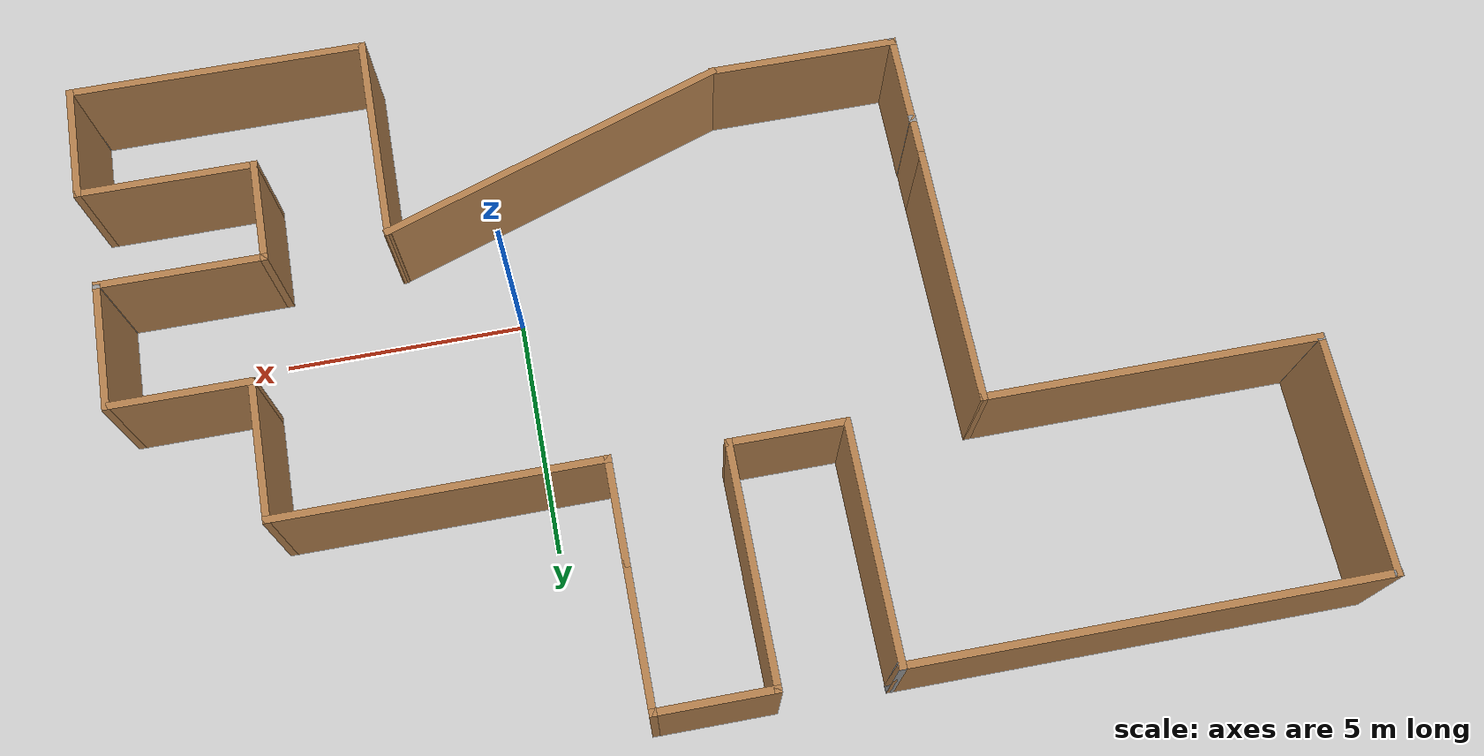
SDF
<sdf version='1.4'>
  <world name='default'>
    <!-- A global light source -->
    <include>
      <uri>model://sun</uri>
    </include>

    <!-- A ground plane -->
    <include>
      <uri>model://ground_plane</uri>
    </include>

    <physics type="ode">
      <real_time_update_rate>1000.0</real_time_update_rate>
      <max_step_size>0.001</max_step_size>
      <real_time_factor>1</real_time_factor>
      <ode>
        <solver>
          <type>quick</type>
          <iters>150</iters>
          <precon_iters>0</precon_iters>
          <sor>1.400000</sor>
          <use_dynamic_moi_rescaling>1</use_dynamic_moi_rescaling>
        </solver>
        <constraints>
          <cfm>0.00001</cfm>
          <erp>0.2</erp>
          <contact_max_correcting_vel>2000.000000</contact_max_correcting_vel>
          <contact_surface_layer>0.01000</contact_surface_layer>
        </constraints>
      </ode>
    </physics>

    <!-- Load world -->
    <include>
      <uri>model://dyno_house</uri>
    </include>

    <scene>
      <ambient>0.4 0.4 0.4 1</ambient>
      <background>0.7 0.7 0.7 1</background>
      <shadows>false</shadows>
    </scene>

    <gui fullscreen='0'>
      <camera name='user_camera'>
        <pose>0.8 0.0 12.0 0 1.5708 0</pose>
        <view_controller>orbit</view_controller>
      </camera>
    </gui>
  </world>
</sdf>

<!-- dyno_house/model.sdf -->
<sdf version='1.7'>
  <model name='dyno_house'>
    <pose>-3.58805 1.49689 0 0 -0 0</pose>
    <link name='Wall_10'>
      <collision name='Wall_10_Collision'>
        <geometry>
          <box>
            <size>2.25 0.15 2.5</size>
          </box>
        </geometry>
        <pose>0 0 1.25 0 -0 0</pose>
      </collision>
      <visual name='Wall_10_Visual'>
        <pose>0 0 1.25 0 -0 0</pose>
        <geometry>
          <box>
            <size>2.25 0.15 2.5</size>
          </box>
        </geometry>
        <material>
          <script>
            <uri>file://media/materials/scripts/gazebo.material</uri>
            <name>Gazebo/Wood</name>
          </script>
          <ambient>1 1 1 1</ambient>
        </material>
        <meta>
          <layer>0</layer>
        </meta>
      </visual>
      <pose>8.39 -4.025 0 0 -0 1.5708</pose>
    </link>
    <link name='Wall_11'>
      <collision name='Wall_11_Collision'>
        <geometry>
          <box>
            <size>3.5 0.15 2.5</size>
          </box>
        </geometry>
        <pose>0 0 1.25 0 -0 0</pose>
      </collision>
      <visual name='Wall_11_Visual'>
        <pose>0 0 1.25 0 -0 0</pose>
        <geometry>
          <box>
            <size>3.5 0.15 2.5</size>
          </box>
        </geometry>
        <material>
          <script>
            <uri>file://media/materials/scripts/gazebo.material</uri>
            <name>Gazebo/Wood</name>
          </script>
          <ambient>1 1 1 1</ambient>
        </material>
        <meta>
          <layer>0</layer>
        </meta>
      </visual>
      <pose>10.065 -2.975 0 0 -0 0</pose>
    </link>
    <link name='Wall_12'>
      <collision name='Wall_12_Collision'>
        <geometry>
          <box>
            <size>0.16 0.15 2.5</size>
          </box>
        </geometry>
        <pose>0 0 1.25 0 -0 0</pose>
      </collision>
      <visual name='Wall_12_Visual'>
        <pose>0 0 1.25 0 -0 0</pose>
        <geometry>
          <box>
            <size>0.16 0.15 2.5</size>
          </box>
        </geometry>
        <material>
          <script>
            <uri>file://media/materials/scripts/gazebo.material</uri>
            <name>Gazebo/Grey</name>
          </script>
          <ambient>1 1 1 1</ambient>
        </material>
        <meta>
          <layer>0</layer>
        </meta>
      </visual>
      <pose>11.745 -2.975 0 0 -0 0</pose>
    </link>
    <link name='Wall_13'>
      <collision name='Wall_13_Collision'>
        <geometry>
          <box>
            <size>2.75 0.15 2.5</size>
          </box>
        </geometry>
        <pose>0 0 1.25 0 -0 0</pose>
      </collision>
      <visual name='Wall_13_Visual'>
        <pose>0 0 1.25 0 -0 0</pose>
        <geometry>
          <box>
            <size>2.75 0.15 2.5</size>
          </box>
        </geometry>
        <material>
          <script>
            <uri>file://media/materials/scripts/gazebo.material</uri>
            <name>Gazebo/Wood</name>
          </script>
          <ambient>1 1 1 1</ambient>
        </material>
        <meta>
          <layer>0</layer>
        </meta>
      </visual>
      <pose>11.75 -1.675 0 0 -0 1.5708</pose>
    </link>
    <link name='Wall_14'>
      <collision name='Wall_14_Collision'>
        <geometry>
          <box>
            <size>3 0.15 2.5</size>
          </box>
        </geometry>
        <pose>0 0 1.25 0 -0 0</pose>
      </collision>
      <visual name='Wall_14_Visual'>
        <pose>0 0 1.25 0 -0 0</pose>
        <geometry>
          <box>
            <size>3 0.15 2.5</size>
          </box>
        </geometry>
        <material>
          <script>
            <uri>file://media/materials/scripts/gazebo.material</uri>
            <name>Gazebo/Wood</name>
          </script>
          <ambient>1 1 1 1</ambient>
        </material>
        <meta>
          <layer>0</layer>
        </meta>
      </visual>
      <pose>10.325 -0.375 0 0 -0 3.14159</pose>
    </link>
    <link name='Wall_16'>
      <collision name='Wall_16_Collision'>
        <geometry>
          <box>
            <size>3 0.15 2.5</size>
          </box>
        </geometry>
        <pose>0 0 1.25 0 -0 0</pose>
      </collision>
      <visual name='Wall_16_Visual'>
        <pose>0 0 1.25 0 -0 0</pose>
        <geometry>
          <box>
            <size>3 0.15 2.5</size>
          </box>
        </geometry>
        <material>
          <script>
            <uri>file://media/materials/scripts/gazebo.material</uri>
            <name>Gazebo/Wood</name>
          </script>
          <ambient>1 1 1 1</ambient>
        </material>
        <meta>
          <layer>0</layer>
        </meta>
      </visual>
      <pose>8.9 1.05 0 0 -0 1.5708</pose>
    </link>
    <link name='Wall_17'>
      <collision name='Wall_17_Collision'>
        <geometry>
          <box>
            <size>6.75 0.15 2.5</size>
          </box>
        </geometry>
        <pose>0 0 1.25 0 -0 0</pose>
      </collision>
      <visual name='Wall_17_Visual'>
        <pose>0 0 1.25 0 -0 0</pose>
        <geometry>
          <box>
            <size>6.75 0.15 2.5</size>
          </box>
        </geometry>
        <material>
          <script>
            <uri>file://media/materials/scripts/gazebo.material</uri>
            <name>Gazebo/Wood</name>
          </script>
          <ambient>1 1 1 1</ambient>
        </material>
        <meta>
          <layer>0</layer>
        </meta>
      </visual>
      <pose>5.6 2.475 0 0 -0 3.14159</pose>
    </link>
    <link name='Wall_18'>
      <collision name='Wall_18_Collision'>
        <geometry>
          <box>
            <size>2.25 0.15 2.5</size>
          </box>
        </geometry>
        <pose>0 0 1.25 0 -0 0</pose>
      </collision>
      <visual name='Wall_18_Visual'>
        <pose>0 0 1.25 0 -0 0</pose>
        <geometry>
          <box>
            <size>2.25 0.15 2.5</size>
          </box>
        </geometry>
        <material>
          <script>
            <uri>file://media/materials/scripts/gazebo.material</uri>
            <name>Gazebo/Wood</name>
          </script>
          <ambient>1 1 1 1</ambient>
        </material>
        <meta>
          <layer>0</layer>
        </meta>
      </visual>
      <pose>2.3 3.525 0 0 -0 1.5708</pose>
    </link>
    <link name='Wall_19'>
      <collision name='Wall_19_Collision'>
        <geometry>
          <box>
            <size>3 0.15 2.5</size>
          </box>
        </geometry>
        <pose>0 0 1.25 0 -0 0</pose>
      </collision>
      <visual name='Wall_19_Visual'>
        <pose>0 0 1.25 0 -0 0</pose>
        <geometry>
          <box>
            <size>3 0.15 2.5</size>
          </box>
        </geometry>
        <material>
          <script>
            <uri>file://media/materials/scripts/gazebo.material</uri>
            <name>Gazebo/Wood</name>
          </script>
          <ambient>1 1 1 1</ambient>
        </material>
        <meta>
          <layer>0</layer>
        </meta>
      </visual>
      <pose>2.3 6 0 0 -0 1.5708</pose>
    </link>
    <link name='Wall_20'>
      <collision name='Wall_20_Collision'>
        <geometry>
          <box>
            <size>2.5 0.15 2.5</size>
          </box>
        </geometry>
        <pose>0 0 1.25 0 -0 0</pose>
      </collision>
      <visual name='Wall_20_Visual'>
        <pose>0 0 1.25 0 -0 0</pose>
        <geometry>
          <box>
            <size>2.5 0.15 2.5</size>
          </box>
        </geometry>
        <material>
          <script>
            <uri>file://media/materials/scripts/gazebo.material</uri>
            <name>Gazebo/Wood</name>
          </script>
          <ambient>1 1 1 1</ambient>
        </material>
        <meta>
          <layer>0</layer>
        </meta>
      </visual>
      <pose>1.125 7.425 0 0 -0 3.14159</pose>
    </link>
    <link name='Wall_21'>
      <collision name='Wall_21_Collision'>
        <geometry>
          <box>
            <size>5 0.15 2.5</size>
          </box>
        </geometry>
        <pose>0 0 1.25 0 -0 0</pose>
      </collision>
      <visual name='Wall_21_Visual'>
        <pose>0 0 1.25 0 -0 0</pose>
        <geometry>
          <box>
            <size>5 0.15 2.5</size>
          </box>
        </geometry>
        <material>
          <script>
            <uri>file://media/materials/scripts/gazebo.material</uri>
            <name>Gazebo/Wood</name>
          </script>
          <ambient>1 1 1 1</ambient>
        </material>
        <meta>
          <layer>0</layer>
        </meta>
      </visual>
      <pose>-0.05 5 0 0 -0 -1.5708</pose>
    </link>
    <link name='Wall_22'>
      <collision name='Wall_22_Collision'>
        <geometry>
          <box>
            <size>2.5 0.15 2.5</size>
          </box>
        </geometry>
        <pose>0 0 1.25 0 -0 0</pose>
      </collision>
      <visual name='Wall_22_Visual'>
        <pose>0 0 1.25 0 -0 0</pose>
        <geometry>
          <box>
            <size>2.5 0.15 2.5</size>
          </box>
        </geometry>
        <material>
          <script>
            <uri>file://media/materials/scripts/gazebo.material</uri>
            <name>Gazebo/Wood</name>
          </script>
          <ambient>1 1 1 1</ambient>
        </material>
        <meta>
          <layer>0</layer>
        </meta>
      </visual>
      <pose>-1.225 2.575 0 0 -0 3.14159</pose>
    </link>
    <link name='Wall_23'>
      <collision name='Wall_23_Collision'>
        <geometry>
          <box>
            <size>5 0.15 2.5</size>
          </box>
        </geometry>
        <pose>0 0 1.25 0 -0 0</pose>
      </collision>
      <visual name='Wall_23_Visual'>
        <pose>0 0 1.25 0 -0 0</pose>
        <geometry>
          <box>
            <size>5 0.15 2.5</size>
          </box>
        </geometry>
        <material>
          <script>
            <uri>file://media/materials/scripts/gazebo.material</uri>
            <name>Gazebo/Wood</name>
          </script>
          <ambient>1 1 1 1</ambient>
        </material>
        <meta>
          <layer>0</layer>
        </meta>
      </visual>
      <pose>-2.4 5 0 0 -0 1.5708</pose>
    </link>
    <link name='Wall_24'>
      <collision name='Wall_24_Collision'>
        <geometry>
          <box>
            <size>0.16 0.15 2.5</size>
          </box>
        </geometry>
        <pose>0 0 1.25 0 -0 0</pose>
      </collision>
      <visual name='Wall_24_Visual'>
        <pose>0 0 1.25 0 -0 0</pose>
        <geometry>
          <box>
            <size>0.16 0.15 2.5</size>
          </box>
        </geometry>
        <material>
          <script>
            <uri>file://media/materials/scripts/gazebo.material</uri>
            <name>Gazebo/Grey</name>
          </script>
          <ambient>1 1 1 1</ambient>
        </material>
        <meta>
          <layer>0</layer>
        </meta>
      </visual>
      <pose>-2.395 7.425 0 0 -0 0</pose>
    </link>
    <link name='Wall_25'>
      <collision name='Wall_25_Collision'>
        <geometry>
          <box>
            <size>9.75 0.15 2.5</size>
          </box>
        </geometry>
        <pose>0 0 1.25 0 -0 0</pose>
      </collision>
      <visual name='Wall_25_Visual'>
        <pose>0 0 1.25 0 -0 0</pose>
        <geometry>
          <box>
            <size>9.75 0.15 2.5</size>
          </box>
        </geometry>
        <material>
          <script>
            <uri>file://media/materials/scripts/gazebo.material</uri>
            <name>Gazebo/Wood</name>
          </script>
          <ambient>1 1 1 1</ambient>
        </material>
        <meta>
          <layer>0</layer>
        </meta>
      </visual>
      <pose>-7.19 7.425 0 0 -0 3.14159</pose>
    </link>
    <link name='Wall_26'>
      <collision name='Wall_26_Collision'>
        <geometry>
          <box>
            <size>0.16 0.15 2.5</size>
          </box>
        </geometry>
        <pose>0 0 1.25 0 -0 0</pose>
      </collision>
      <visual name='Wall_26_Visual'>
        <pose>0 0 1.25 0 -0 0</pose>
        <geometry>
          <box>
            <size>0.16 0.15 2.5</size>
          </box>
        </geometry>
        <material>
          <script>
            <uri>file://media/materials/scripts/gazebo.material</uri>
            <name>Gazebo/Grey</name>
          </script>
          <ambient>1 1 1 1</ambient>
        </material>
        <meta>
          <layer>0</layer>
        </meta>
      </visual>
      <pose>-11.985 7.425 0 0 -0 0</pose>
    </link>
    <link name='Wall_27'>
      <collision name='Wall_27_Collision'>
        <geometry>
          <box>
            <size>5 0.15 2.5</size>
          </box>
        </geometry>
        <pose>0 0 1.25 0 -0 0</pose>
      </collision>
      <visual name='Wall_27_Visual'>
        <pose>0 0 1.25 0 -0 0</pose>
        <geometry>
          <box>
            <size>5 0.15 2.5</size>
          </box>
        </geometry>
        <material>
          <script>
            <uri>file://media/materials/scripts/gazebo.material</uri>
            <name>Gazebo/Wood</name>
          </script>
          <ambient>1 1 1 1</ambient>
        </material>
        <meta>
          <layer>0</layer>
        </meta>
      </visual>
      <pose>-11.98 5 0 0 -0 -1.5708</pose>
    </link>
    <link name='Wall_28'>
      <collision name='Wall_28_Collision'>
        <geometry>
          <box>
            <size>0.16 0.15 2.5</size>
          </box>
        </geometry>
        <pose>0 0 1.25 0 -0 0</pose>
      </collision>
      <visual name='Wall_28_Visual'>
        <pose>0 0 1.25 0 -0 0</pose>
        <geometry>
          <box>
            <size>0.16 0.15 2.5</size>
          </box>
        </geometry>
        <material>
          <script>
            <uri>file://media/materials/scripts/gazebo.material</uri>
            <name>Gazebo/Grey</name>
          </script>
          <ambient>1 1 1 1</ambient>
        </material>
        <meta>
          <layer>0</layer>
        </meta>
      </visual>
      <pose>-11.975 2.575 0 0 -0 0</pose>
    </link>
    <link name='Wall_29'>
      <collision name='Wall_29_Collision'>
        <geometry>
          <box>
            <size>7 0.15 2.5</size>
          </box>
        </geometry>
        <pose>0 0 1.25 0 -0 0</pose>
      </collision>
      <visual name='Wall_29_Visual'>
        <pose>0 0 1.25 0 -0 0</pose>
        <geometry>
          <box>
            <size>7 0.15 2.5</size>
          </box>
        </geometry>
        <material>
          <script>
            <uri>file://media/materials/scripts/gazebo.material</uri>
            <name>Gazebo/Wood</name>
          </script>
          <ambient>1 1 1 1</ambient>
        </material>
        <meta>
          <layer>0</layer>
        </meta>
      </visual>
      <pose>-8.545 2.575 0 0 -0 0</pose>
    </link>
    <link name='Wall_30'>
      <collision name='Wall_30_Collision'>
        <geometry>
          <box>
            <size>5.5 0.15 2.5</size>
          </box>
        </geometry>
        <pose>0 0 1.25 0 -0 0</pose>
      </collision>
      <visual name='Wall_30_Visual'>
        <pose>0 0 1.25 0 -0 0</pose>
        <geometry>
          <box>
            <size>5.5 0.15 2.5</size>
          </box>
        </geometry>
        <material>
          <script>
            <uri>file://media/materials/scripts/gazebo.material</uri>
            <name>Gazebo/Wood</name>
          </script>
          <ambient>1 1 1 1</ambient>
        </material>
        <meta>
          <layer>0</layer>
        </meta>
      </visual>
      <pose>-5.12 -0.1 0 0 -0 -1.5708</pose>
    </link>
    <link name='Wall_31'>
      <collision name='Wall_31_Collision'>
        <geometry>
          <box>
            <size>1 0.15 2.5</size>
          </box>
        </geometry>
        <pose>0 0 1.25 0 -0 0</pose>
      </collision>
      <visual name='Wall_31_Visual'>
        <pose>0 0 1.25 0 -0 0</pose>
        <geometry>
          <box>
            <size>1 0.15 2.5</size>
          </box>
        </geometry>
        <material>
          <script>
            <uri>file://media/materials/scripts/gazebo.material</uri>
            <name>Gazebo/Wood</name>
          </script>
          <ambient>1 1 1 1</ambient>
        </material>
        <meta>
          <layer>0</layer>
        </meta>
      </visual>
      <pose>-5.12 -3.2 0 0 -0 -1.5708</pose>
    </link>
    <link name='Wall_32'>
      <collision name='Wall_32_Collision'>
        <geometry>
          <box>
            <size>0.16 0.15 2.5</size>
          </box>
        </geometry>
        <pose>0 0 1.25 0 -0 0</pose>
      </collision>
      <visual name='Wall_32_Visual'>
        <pose>0 0 1.25 0 -0 0</pose>
        <geometry>
          <box>
            <size>0.16 0.15 2.5</size>
          </box>
        </geometry>
        <material>
          <script>
            <uri>file://media/materials/scripts/gazebo.material</uri>
            <name>Gazebo/Grey</name>
          </script>
          <ambient>1 1 1 1</ambient>
        </material>
        <meta>
          <layer>0</layer>
        </meta>
      </visual>
      <pose>-5.115 -3.625 0 0 -0 0</pose>
    </link>
    <link name='Wall_33'>
      <collision name='Wall_33_Collision'>
        <geometry>
          <box>
            <size>2 0.15 2.5</size>
          </box>
        </geometry>
        <pose>0 0 1.25 0 -0 0</pose>
      </collision>
      <visual name='Wall_33_Visual'>
        <pose>0 0 1.25 0 -0 0</pose>
        <geometry>
          <box>
            <size>2 0.15 2.5</size>
          </box>
        </geometry>
        <material>
          <script>
            <uri>file://media/materials/scripts/gazebo.material</uri>
            <name>Gazebo/Wood</name>
          </script>
          <ambient>1 1 1 1</ambient>
        </material>
        <meta>
          <layer>0</layer>
        </meta>
      </visual>
      <pose>-5.11 -4.55 0 0 -0 -1.5708</pose>
    </link>
    <link name='Wall_34'>
      <collision name='Wall_34_Collision'>
        <geometry>
          <box>
            <size>0.16 0.15 2.5</size>
          </box>
        </geometry>
        <pose>0 0 1.25 0 -0 0</pose>
      </collision>
      <visual name='Wall_34_Visual'>
        <pose>0 0 1.25 0 -0 0</pose>
        <geometry>
          <box>
            <size>0.16 0.15 2.5</size>
          </box>
        </geometry>
        <material>
          <script>
            <uri>file://media/materials/scripts/gazebo.material</uri>
            <name>Gazebo/Grey</name>
          </script>
          <ambient>1 1 1 1</ambient>
        </material>
        <meta>
          <layer>0</layer>
        </meta>
      </visual>
      <pose>-5.105 -5.475 0 0 -0 0</pose>
    </link>
    <link name='Wall_35'>
      <collision name='Wall_35_Collision'>
        <geometry>
          <box>
            <size>4 0.15 2.5</size>
          </box>
        </geometry>
        <pose>0 0 1.25 0 -0 0</pose>
      </collision>
      <visual name='Wall_35_Visual'>
        <pose>0 0 1.25 0 -0 0</pose>
        <geometry>
          <box>
            <size>4 0.15 2.5</size>
          </box>
        </geometry>
        <material>
          <script>
            <uri>file://media/materials/scripts/gazebo.material</uri>
            <name>Gazebo/Wood</name>
          </script>
          <ambient>1 1 1 1</ambient>
        </material>
        <meta>
          <layer>0</layer>
        </meta>
      </visual>
      <pose>-3.175 -5.475 0 0 -0 0</pose>
    </link>
    <link name='Wall_37'>
      <collision name='Wall_37_Collision'>
        <geometry>
          <box>
            <size>7.67309 0.15 2.5</size>
          </box>
        </geometry>
        <pose>0 0 1.25 0 -0 0</pose>
      </collision>
      <visual name='Wall_37_Visual'>
        <pose>0 0 1.25 0 -0 0</pose>
        <geometry>
          <box>
            <size>7.67309 0.15 2.5</size>
          </box>
        </geometry>
        <material>
          <script>
            <uri>file://media/materials/scripts/gazebo.material</uri>
            <name>Gazebo/Wood</name>
          </script>
          <ambient>1 1 1 1</ambient>
        </material>
        <meta>
          <layer>0</layer>
        </meta>
      </visual>
      <pose>2.315 -4.275 0 0 -0 0.324693</pose>
    </link>
    <link name='Wall_5'>
      <collision name='Wall_5_Collision'>
        <geometry>
          <box>
            <size>4.5 0.15 2.5</size>
          </box>
        </geometry>
        <pose>0 0 1.25 0 -0 0</pose>
      </collision>
      <visual name='Wall_5_Visual'>
        <pose>0 0 1.25 0 -0 0</pose>
        <geometry>
          <box>
            <size>4.5 0.15 2.5</size>
          </box>
        </geometry>
        <material>
          <script>
            <uri>file://media/materials/scripts/gazebo.material</uri>
            <name>Gazebo/Wood</name>
          </script>
          <ambient>1 1 1 1</ambient>
        </material>
        <meta>
          <layer>0</layer>
        </meta>
      </visual>
      <pose>5.88 -5.25 0 0 -0 -1.5708</pose>
    </link>
    <link name='Wall_6'>
      <collision name='Wall_6_Collision'>
        <geometry>
          <box>
            <size>6.25 0.15 2.5</size>
          </box>
        </geometry>
        <pose>0 0 1.25 0 -0 0</pose>
      </collision>
      <visual name='Wall_6_Visual'>
        <pose>0 0 1.25 0 -0 0</pose>
        <geometry>
          <box>
            <size>6.25 0.15 2.5</size>
          </box>
        </geometry>
        <material>
          <script>
            <uri>file://media/materials/scripts/gazebo.material</uri>
            <name>Gazebo/Wood</name>
          </script>
          <ambient>1 1 1 1</ambient>
        </material>
        <meta>
          <layer>0</layer>
        </meta>
      </visual>
      <pose>8.93 -7.425 0 0 -0 0</pose>
    </link>
    <link name='Wall_7'>
      <collision name='Wall_7_Collision'>
        <geometry>
          <box>
            <size>0.16 0.15 2.5</size>
          </box>
        </geometry>
        <pose>0 0 1.25 0 -0 0</pose>
      </collision>
      <visual name='Wall_7_Visual'>
        <pose>0 0 1.25 0 -0 0</pose>
        <geometry>
          <box>
            <size>0.16 0.15 2.5</size>
          </box>
        </geometry>
        <material>
          <script>
            <uri>file://media/materials/scripts/gazebo.material</uri>
            <name>Gazebo/Grey</name>
          </script>
          <ambient>1 1 1 1</ambient>
        </material>
        <meta>
          <layer>0</layer>
        </meta>
      </visual>
      <pose>11.985 -7.425 0 0 -0 0</pose>
    </link>
    <link name='Wall_8'>
      <collision name='Wall_8_Collision'>
        <geometry>
          <box>
            <size>2.5 0.15 2.5</size>
          </box>
        </geometry>
        <pose>0 0 1.25 0 -0 0</pose>
      </collision>
      <visual name='Wall_8_Visual'>
        <pose>0 0 1.25 0 -0 0</pose>
        <geometry>
          <box>
            <size>2.5 0.15 2.5</size>
          </box>
        </geometry>
        <material>
          <script>
            <uri>file://media/materials/scripts/gazebo.material</uri>
            <name>Gazebo/Wood</name>
          </script>
          <ambient>1 1 1 1</ambient>
        </material>
        <meta>
          <layer>0</layer>
        </meta>
      </visual>
      <pose>11.99 -6.25 0 0 -0 1.5708</pose>
    </link>
    <link name='Wall_9'>
      <collision name='Wall_9_Collision'>
        <geometry>
          <box>
            <size>3.75 0.15 2.5</size>
          </box>
        </geometry>
        <pose>0 0 1.25 0 -0 0</pose>
      </collision>
      <visual name='Wall_9_Visual'>
        <pose>0 0 1.25 0 -0 0</pose>
        <geometry>
          <box>
            <size>3.75 0.15 2.5</size>
          </box>
        </geometry>
        <material>
          <script>
            <uri>file://media/materials/scripts/gazebo.material</uri>
            <name>Gazebo/Wood</name>
          </script>
          <ambient>1 1 1 1</ambient>
        </material>
        <meta>
          <layer>0</layer>
        </meta>
      </visual>
      <pose>10.19 -5.075 0 0 -0 3.14159</pose>
    </link>
    <static>1</static>
  </model>
</sdf>
